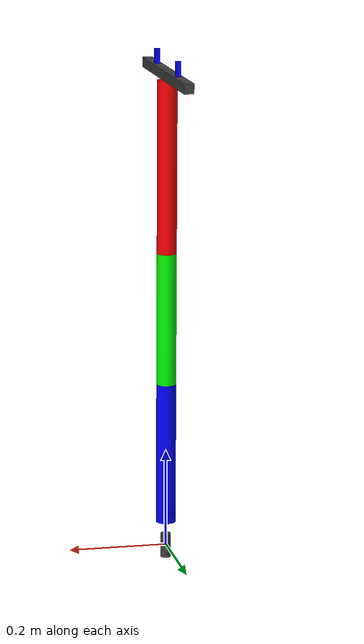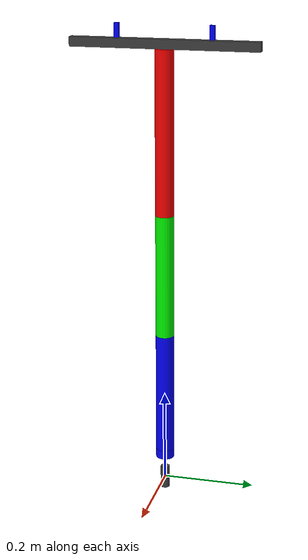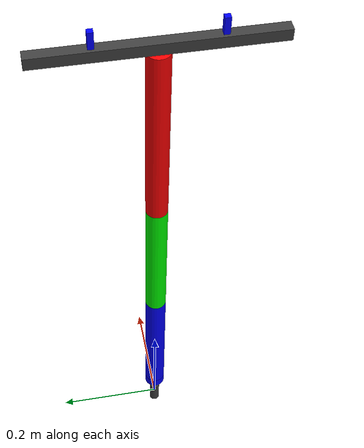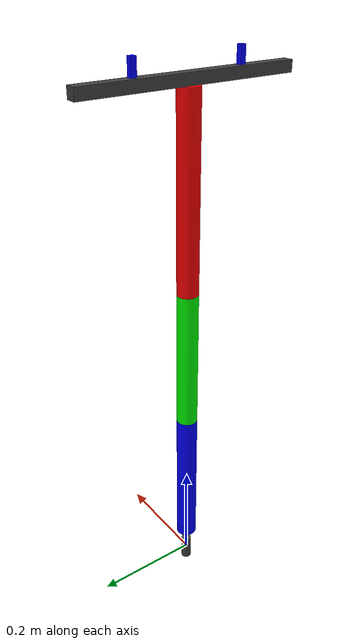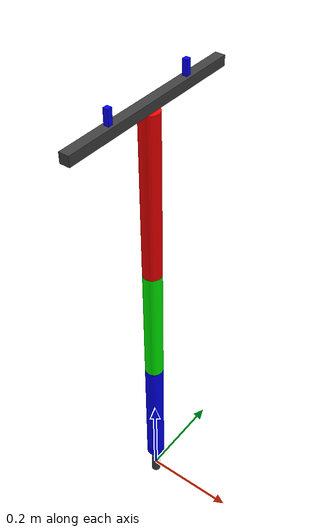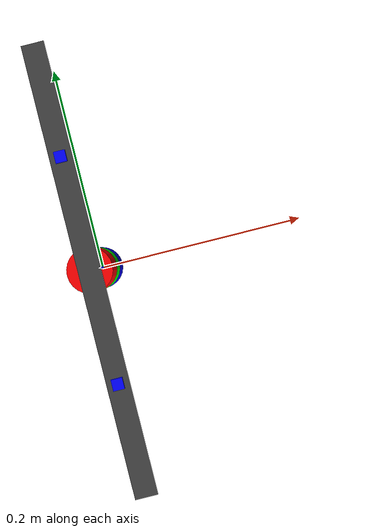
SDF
<sdf version='1.11'>
  <model name='rrr_robot'>
  <self_collide>true</self_collide>
    <link name='base_link'>
      <inertial>
        <pose>0 0 0 0 0 0</pose>
        <mass>0.001</mass>
        <inertia>
          <ixx>1.0000000000000001e-05</ixx>
          <ixy>0</ixy>
          <ixz>0</ixz>
          <iyy>1.0000000000000001e-05</iyy>
          <iyz>0</iyz>
          <izz>1.0000000000000001e-05</izz>
        </inertia>
      </inertial>
      <collision name='base_link_collision'>
        <pose>0 0 0 0 0 0</pose>
        <geometry>
          <cylinder>
            <length>0.050000000000000003</length>
            <radius>0.01</radius>
          </cylinder>
        </geometry>
      </collision>
      <visual name='base_link_visual'>
        <pose>0 0 0 0 0 0</pose>
        <geometry>
          <cylinder>
            <length>0.050000000000000003</length>
            <radius>0.01</radius>
          </cylinder>
        </geometry>
        <material>
          <diffuse>0.25 0.25 0.25 1</diffuse>
          <ambient>0.25 0.25 0.25 1</ambient>
        </material>
      </visual>
    </link>
    <joint name='joint0' type='revolute'>
      <pose relative_to='base_link'>0 0 0.050000000000000003 0 0 0</pose>
      <parent>base_link</parent>
      <child>link0</child>
      <axis>
        <xyz>0 0 1</xyz>
        <limit>
          <lower>-3.1400000000000001</lower>
          <upper>3.1400000000000001</upper>
          <effort>10</effort>
          <velocity>1</velocity>
        </limit>
        <dynamics>
          <spring_reference>0</spring_reference>
          <spring_stiffness>0</spring_stiffness>
        </dynamics>
      </axis>
    </joint>
    <link name='link0'>
      <pose relative_to='joint0'>0 0 0 0 0 0</pose>
      <inertial>
        <pose>0 0 0 0 0 0</pose>
        <mass>0.29999999999999999</mass>
        <inertia>
          <ixx>0.0030000000000000001</ixx>
          <ixy>0</ixy>
          <ixz>0</ixz>
          <iyy>0.0030000000000000001</iyy>
          <iyz>0</iyz>
          <izz>0.0030000000000000001</izz>
        </inertia>
      </inertial>
      <collision name='link0_collision'>
        <pose>0 0 0.01 0 0 0</pose>
        <geometry>
          <cylinder>
            <length>0.02</length>
            <radius>0.02</radius>
          </cylinder>
        </geometry>
      </collision>
      <visual name='link0_visual'>
        <pose>0 0 0.01 0 0 0</pose>
        <geometry>
          <cylinder>
            <length>0.02</length>
            <radius>0.02</radius>
          </cylinder>
        </geometry>
        <material>
          <diffuse>0 0 1 1</diffuse>
          <ambient>0 0 1 1</ambient>
        </material>
      </visual>
    </link>
    <joint name='joint1' type='revolute'>
      <pose relative_to='link0'>0 0 0.02 0 0 0</pose>
      <parent>link0</parent>
      <child>link1</child>
      <axis>
        <xyz>0 1 0</xyz>
        <limit>
          <lower>-1.5700000000000001</lower>
          <upper>1.5700000000000001</upper>
          <effort>10</effort>
          <velocity>1</velocity>
        </limit>
        <dynamics>
          <spring_reference>0</spring_reference>
          <spring_stiffness>0</spring_stiffness>
        </dynamics>
      </axis>
    </joint>
    <link name='link1'>
      <pose relative_to='joint1'>0 0 0 0 0 0</pose>
      <inertial>
        <pose>0 0 0 0 0 0</pose>
        <mass>0.20000000000000001</mass>
        <inertia>
          <ixx>0.002</ixx>
          <ixy>0</ixy>
          <ixz>0</ixz>
          <iyy>0.002</iyy>
          <iyz>0</iyz>
          <izz>0.002</izz>
        </inertia>
      </inertial>
      <collision name='link1_collision'>
        <pose>0 0 0.13500000000000001 0 0 0</pose>
        <geometry>
          <cylinder>
            <length>0.27000000000000002</length>
            <radius>0.02</radius>
          </cylinder>
        </geometry>
      </collision>
      <visual name='link1_visual'>
        <pose>0 0 0.13500000000000001 0 0 0</pose>
        <geometry>
          <cylinder>
            <length>0.27000000000000002</length>
            <radius>0.02</radius>
          </cylinder>
        </geometry>
        <material>
          <diffuse>0 0 1 1</diffuse>
          <ambient>0 0 1 1</ambient>
        </material>
      </visual>
    </link>
    <joint name='joint2' type='revolute'>
      <pose relative_to='link1'>0 0 0.27000000000000002 0 0 0</pose>
      <parent>link1</parent>
      <child>link2</child>
      <axis>
        <xyz>0 1 0</xyz>
        <limit>
          <lower>-2.5</lower>
          <upper>2.5</upper>
          <effort>10</effort>
          <velocity>1</velocity>
        </limit>
        <dynamics>
          <spring_reference>0</spring_reference>
          <spring_stiffness>0</spring_stiffness>
        </dynamics>
      </axis>
    </joint>
    <link name='link2'>
      <pose relative_to='joint2'>0 0 0 0 0 0</pose>
      <inertial>
        <pose>0 0 0 0 0 0</pose>
        <mass>0.29999999999999999</mass>
        <inertia>
          <ixx>0.0030000000000000001</ixx>
          <ixy>0</ixy>
          <ixz>0</ixz>
          <iyy>0.0030000000000000001</iyy>
          <iyz>0</iyz>
          <izz>0.0030000000000000001</izz>
        </inertia>
      </inertial>
      <collision name='link2_collision'>
        <pose>0 0 0.13500000000000001 0 0 0</pose>
        <geometry>
          <cylinder>
            <length>0.27000000000000002</length>
            <radius>0.02</radius>
          </cylinder>
        </geometry>
      </collision>
      <visual name='link2_visual'>
        <pose>0 0 0.13500000000000001 0 0 0</pose>
        <geometry>
          <cylinder>
            <length>0.27000000000000002</length>
            <radius>0.02</radius>
          </cylinder>
        </geometry>
        <material>
          <diffuse>0 1 0 1</diffuse>
          <ambient>0 1 0 1</ambient>
        </material>
      </visual>
    </link>
    <joint name='joint3' type='revolute'>
      <pose relative_to='link2'>0 0 0.27000000000000002 0 0 0</pose>
      <parent>link2</parent>
      <child>link3</child>
      <axis>
        <xyz>0 1 0</xyz>
        <limit>
          <lower>-2.5</lower>
          <upper>2.5</upper>
          <effort>10</effort>
          <velocity>1</velocity>
        </limit>
        <dynamics>
          <spring_reference>0</spring_reference>
          <spring_stiffness>0</spring_stiffness>
        </dynamics>
      </axis>
    </joint>
    <link name='link3'>
      <pose relative_to='joint3'>0 0 0 0 0 0</pose>
      <inertial>
        <pose>0 0 0 0 0 0</pose>
        <mass>0.29999999999999999</mass>
        <inertia>
          <ixx>0.0030000000000000001</ixx>
          <ixy>0</ixy>
          <ixz>0</ixz>
          <iyy>0.0030000000000000001</iyy>
          <iyz>0</iyz>
          <izz>0.0030000000000000001</izz>
        </inertia>
      </inertial>
      <collision name='link3_collision'>
        <pose>0 0 0.17499999999999999 0 0 0</pose>
        <geometry>
          <cylinder>
            <length>0.34999999999999998</length>
            <radius>0.02</radius>
          </cylinder>
        </geometry>
      </collision>
      <visual name='link3_visual'>
        <pose>0 0 0.17499999999999999 0 0 0</pose>
        <geometry>
          <cylinder>
            <length>0.34999999999999998</length>
            <radius>0.02</radius>
          </cylinder>
        </geometry>
        <material>
          <diffuse>1 0 0 1</diffuse>
          <ambient>1 0 0 1</ambient>
        </material>
      </visual>
    </link>
    <joint name='joint4' type='revolute'>
      <pose relative_to='link3'>0 0 0.34999999999999998 0 0 0</pose>
      <parent>link3</parent>
      <child>gripper_base</child>
      <axis>
        <xyz>0 0 1</xyz>
        <limit>
          <lower>-3.1400000000000001</lower>
          <upper>3.1400000000000001</upper>
          <effort>10</effort>
          <velocity>1</velocity>
        </limit>
        <dynamics>
          <spring_reference>0</spring_reference>
          <spring_stiffness>0</spring_stiffness>
        </dynamics>
      </axis>
    </joint>
    <link name='gripper_base'>
      <pose relative_to='joint4'>0 0 0 0 0 0</pose>
      <inertial>
        <pose>0 0 0 0 0 0</pose>
        <mass>0.10000000000000001</mass>
        <inertia>
          <ixx>0.001</ixx>
          <ixy>0</ixy>
          <ixz>0</ixz>
          <iyy>0.001</iyy>
          <iyz>0</iyz>
          <izz>0.001</izz>
        </inertia>
      </inertial>
      <collision name='gripper_base_collision'>
        <pose>0 0 0.01 0 0 0</pose>
        <geometry>
          <box>
            <size>0.02 0.40000000000000002 0.02</size>
          </box>
        </geometry>
      </collision>
      <visual name='gripper_base_visual'>
        <pose>0 0 0.01 0 0 0</pose>
        <geometry>
          <box>
            <size>0.02 0.40000000000000002 0.02</size>
          </box>
        </geometry>
        <material>
          <diffuse>0.25 0.25 0.25 1</diffuse>
          <ambient>0.25 0.25 0.25 1</ambient>
        </material>
      </visual>
    </link>
    <joint name='finger_left_joint' type='prismatic'>
      <pose relative_to='gripper_base'>0 0.10000000000000001 0.029999999999999999 0 0 0</pose>
      <parent>gripper_base</parent>
      <child>gripper_finger_left</child>
      <axis>
        <xyz>0 1 0</xyz>
        <limit>
          <lower>-0.089999999999999997</lower>
          <upper>0.050000000000000003</upper>
          <effort>10</effort>
          <velocity>0.5</velocity>
        </limit>
        <dynamics>
          <spring_reference>0</spring_reference>
          <spring_stiffness>0</spring_stiffness>
        </dynamics>
      </axis>
    </joint>
    <link name='gripper_finger_left'>
      <pose relative_to='finger_left_joint'>0 0 0 0 0 0</pose>
      <inertial>
        <pose>0 0 0 0 0 0</pose>
        <mass>0.01</mass>
        <inertia>
          <ixx>0.0001</ixx>
          <ixy>0</ixy>
          <ixz>0</ixz>
          <iyy>0.0001</iyy>
          <iyz>0</iyz>
          <izz>0.0001</izz>
        </inertia>
      </inertial>
      <collision name='gripper_finger_left_collision'>
        <pose>0 0 0 0 0 0</pose>
        <geometry>
          <box>
            <size>0.01 0.01 0.040000000000000001</size>
          </box>
        </geometry>
      </collision>
      <visual name='gripper_finger_left_visual'>
        <pose>0 0 0 0 0 0</pose>
        <geometry>
          <box>
            <size>0.01 0.01 0.040000000000000001</size>
          </box>
        </geometry>
        <material>
          <diffuse>0 0 1 1</diffuse>
          <ambient>0 0 1 1</ambient>
        </material>
      </visual>
    </link>
    <joint name='finger_right_joint' type='prismatic'>
      <pose relative_to='gripper_base'>0 -0.10000000000000001 0.029999999999999999 0 0 0</pose>
      <parent>gripper_base</parent>
      <child>gripper_finger_right</child>
      <axis>
        <xyz>0 -1 0</xyz>
        <limit>
          <lower>-0.089999999999999997</lower>
          <upper>0.050000000000000003</upper>
          <effort>10</effort>
          <velocity>0.5</velocity>
        </limit>
        <dynamics>
          <spring_reference>0</spring_reference>
          <spring_stiffness>0</spring_stiffness>
        </dynamics>
      </axis>
    </joint>
    <link name='gripper_finger_right'>
      <pose relative_to='finger_right_joint'>0 0 0 0 0 0</pose>
      <inertial>
        <pose>0 0 0 0 0 0</pose>
        <mass>0.01</mass>
        <inertia>
          <ixx>0.0001</ixx>
          <ixy>0</ixy>
          <ixz>0</ixz>
          <iyy>0.0001</iyy>
          <iyz>0</iyz>
          <izz>0.0001</izz>
        </inertia>
      </inertial>
      <collision name='gripper_finger_right_collision'>
        <pose>0 0 0 0 0 0</pose>
        <geometry>
          <box>
            <size>0.01 0.01 0.040000000000000001</size>
          </box>
        </geometry>
      </collision>
      <visual name='gripper_finger_right_visual'>
        <pose>0 0 0 0 0 0</pose>
        <geometry>
          <box>
            <size>0.01 0.01 0.040000000000000001</size>
          </box>
        </geometry>
        <material>
          <diffuse>0 0 1 1</diffuse>
          <ambient>0 0 1 1</ambient>
        </material>
      </visual>
    </link>
    <plugin filename="gz-sim-joint-position-controller-system" name="gz::sim::systems::JointPositionController">
      <joint_name>joint0</joint_name>
      <topic>/rrr/joint0/cmd_pos</topic>
      <p_gain>1000</p_gain>
      <i_gain>100</i_gain>
      <d_gain>50</d_gain>
      <cmd_max>30</cmd_max>
      <cmd_min>-30</cmd_min>
    </plugin>

    <plugin filename="gz-sim-joint-position-controller-system" name="gz::sim::systems::JointPositionController">
      <joint_name>joint1</joint_name>
      <topic>/rrr/joint1/cmd_pos</topic>
      <p_gain>5000</p_gain> <i_gain>200</i_gain>
      <d_gain>100</d_gain>
      <cmd_max>50</cmd_max>
      <cmd_min>-50</cmd_min>
    </plugin>

    <plugin filename="gz-sim-joint-position-controller-system" name="gz::sim::systems::JointPositionController">
      <joint_name>joint2</joint_name>
      <topic>/rrr/joint2/cmd_pos</topic>
      <p_gain>3000</p_gain>
      <i_gain>100</i_gain>
      <d_gain>50</d_gain>
      <cmd_max>30</cmd_max>
      <cmd_min>-30</cmd_min>
    </plugin>

    <plugin filename="gz-sim-joint-position-controller-system" name="gz::sim::systems::JointPositionController">
      <joint_name>joint3</joint_name>
      <topic>/rrr/joint3/cmd_pos</topic>
      <p_gain>1000</p_gain>
      <i_gain>50</i_gain>
      <d_gain>20</d_gain>
      <cmd_max>15</cmd_max>
      <cmd_min>-15</cmd_min>
    </plugin>

    <plugin filename="gz-sim-joint-position-controller-system" name="gz::sim::systems::JointPositionController">
      <joint_name>joint4</joint_name>
      <topic>/rrr/joint4/cmd_pos</topic>
      <p_gain>500</p_gain>
      <cmd_max>5</cmd_max>
      <cmd_min>-5</cmd_min>
    </plugin>

    <plugin filename="gz-sim-joint-position-controller-system" name="gz::sim::systems::JointPositionController">
      <joint_name>finger_left_joint</joint_name>
      <topic>/rrr/gripper/cmd_pos</topic>
      <p_gain>200</p_gain>
      <i_gain>0</i_gain>
      <d_gain>10</d_gain>
      <cmd_max>100</cmd_max>
      <cmd_min>-100</cmd_min>
    </plugin>

    <plugin filename="gz-sim-joint-position-controller-system" name="gz::sim::systems::JointPositionController">
      <joint_name>finger_right_joint</joint_name>
      <topic>/rrr/gripper/cmd_pos</topic>
      <p_gain>200</p_gain>
      <i_gain>0</i_gain>
      <d_gain>10</d_gain>
      <cmd_max>100</cmd_max>
      <cmd_min>-100</cmd_min>
    </plugin>

  </model>
</sdf>
